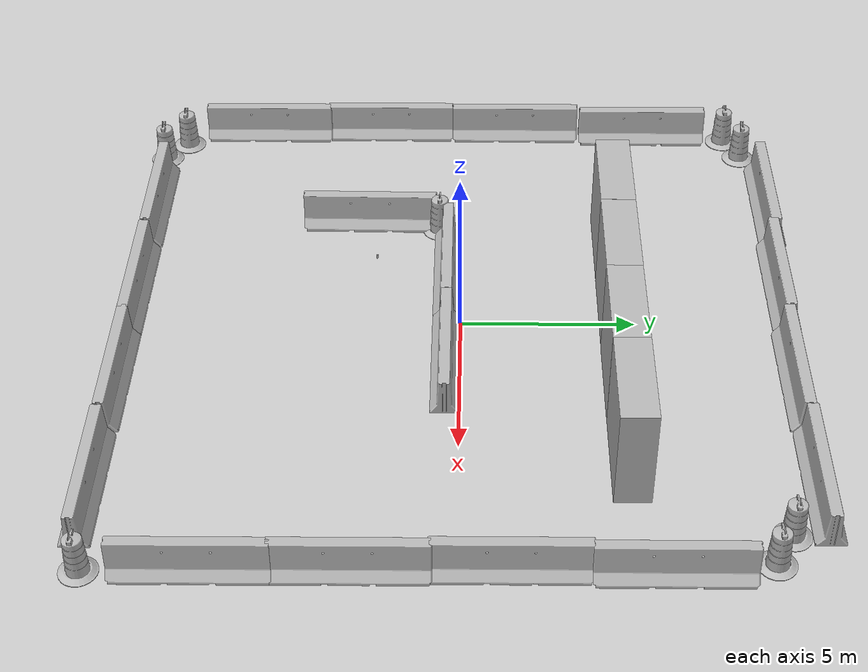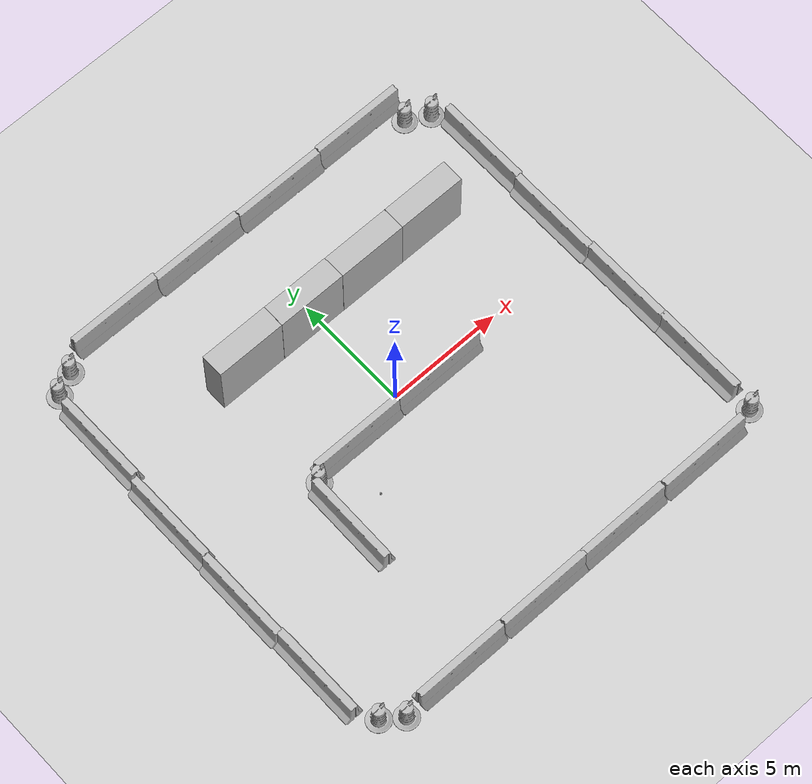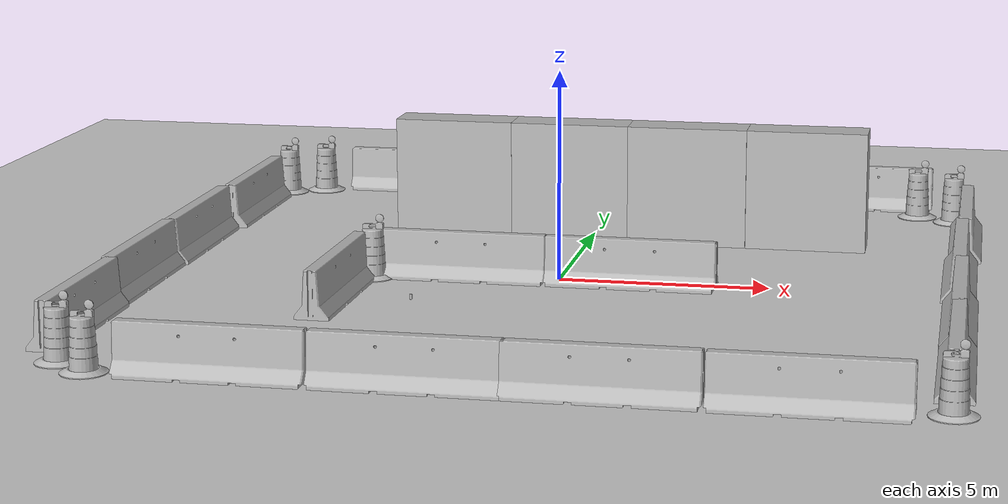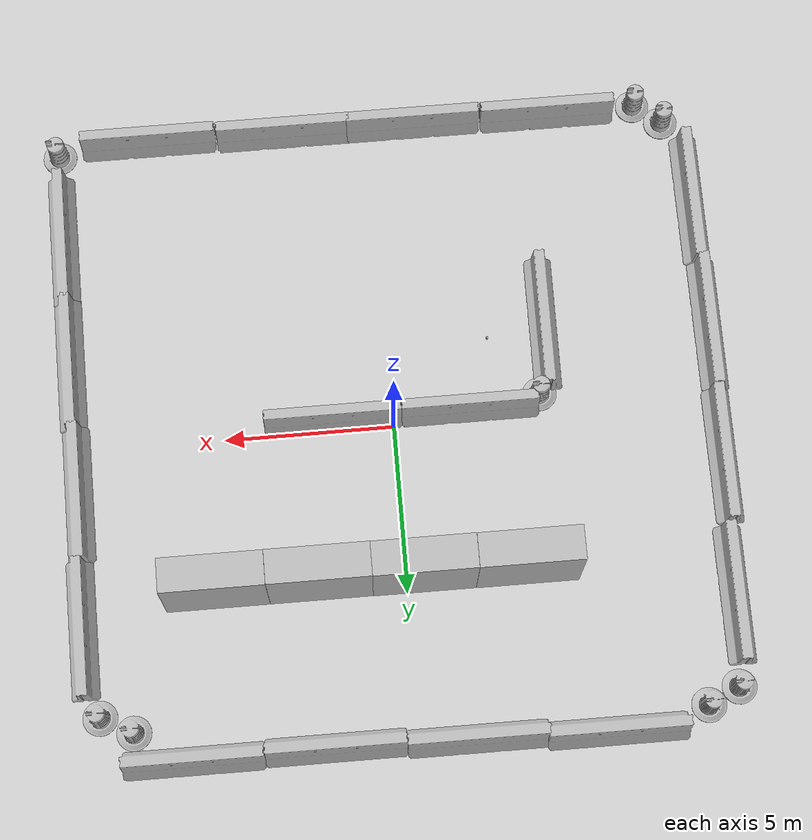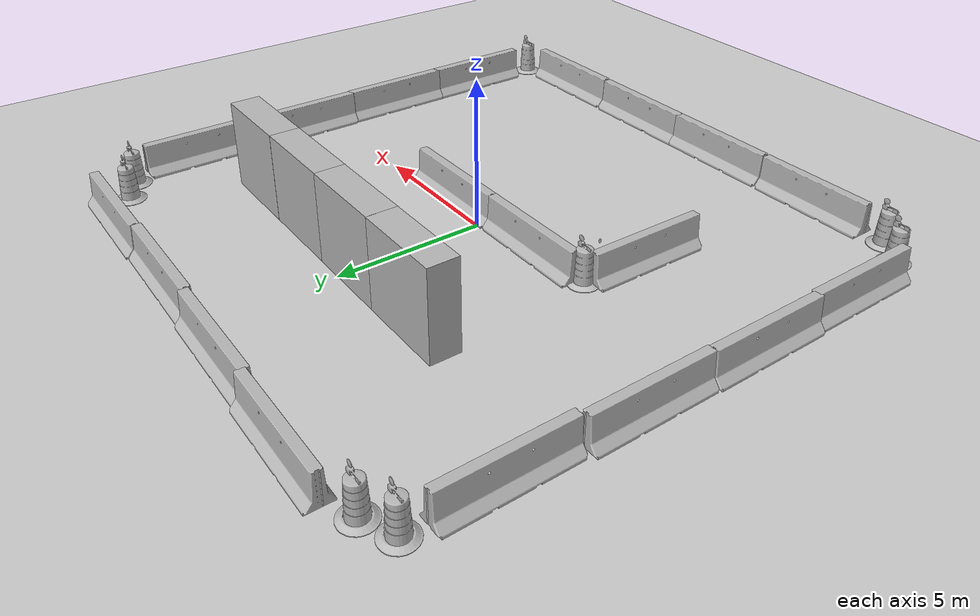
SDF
<sdf version="1.6">
 <world name="default">
  <light name="sun" type="directional">
   <pose>0 0 10 0 -0 0</pose>
   <diffuse>0.8 0.8 0.8 1</diffuse>
   <specular>0.2 0.2 0.2 1</specular>
   <attenuation>
    <range>1000</range>
    <constant>0.9</constant>
    <linear>0.01</linear>
    <quadratic>0.001</quadratic>
   </attenuation>
   <direction>-0.5 0.1 -0.9</direction>
  </light>
  <model name="ground_plane">
   <static>1</static>
   <link name="link">
    <collision name="collision">
     <geometry><plane><normal>0 0 1</normal><size>100 100</size></plane></geometry>
     <surface><friction><ode><mu>100</mu><mu2>50</mu2></ode></friction></surface>
    </collision>
    <visual name="visual">
     <cast_shadows>0</cast_shadows>
     <geometry><plane><normal>0 0 1</normal><size>100 100</size></plane></geometry>
     <material>
      <script><uri>file://media/materials/scripts/gazebo.material</uri><name>Gazebo/Grey</name></script>
     </material>
    </visual>
   </link>
  </model>
  <gravity>0 0 -9.8</gravity>
  <magnetic_field>6e-06 2.3e-05 -4.2e-05</magnetic_field>
  <atmosphere type="adiabatic"/>
  <physics name="default_physics" default="0" type="ode">
   <max_step_size>0.001</max_step_size>
   <real_time_factor>1</real_time_factor>
   <real_time_update_rate>1000</real_time_update_rate>
  </physics>
  <scene><ambient>0.4 0.4 0.4 1</ambient><background>0.7 0.7 0.7 1</background><shadows>1</shadows></scene>
  <spherical_coordinates>
   <surface_model>EARTH_WGS84</surface_model>
   <latitude_deg>0</latitude_deg>
   <longitude_deg>0</longitude_deg>
   <elevation>0</elevation>
   <heading_deg>0</heading_deg>
  </spherical_coordinates>
  <model name="jersey_barrier">
   <static>1</static>
   <link name="link">
    <visual name="visual">
     <geometry><mesh><uri>model://jersey_barrier/meshes/jersey_barrier.dae</uri></mesh></geometry>
    </visual>
    <collision name="upright">
     <pose>0 0 0.5715 0 -0 0</pose>
     <geometry><box><size>4.06542 0.3063 1.143</size></box></geometry>
    </collision>
    <collision name="base">
     <pose>0 0 0.032258 0 -0 0</pose>
     <geometry><box><size>4.06542 0.8107 0.064516</size></box></geometry>
    </collision>
    <collision name="base2">
     <pose>0 0 0.1 0 -0 0</pose>
     <geometry><box><size>4.06542 0.65 0.1</size></box></geometry>
    </collision>
    <collision name="base3">
     <pose>0 0 0.2 0 -0 0</pose>
     <geometry><box><size>4.06542 0.5 0.1</size></box></geometry>
    </collision>
    <collision name="left-angle">
     <pose>0 -0.224 0.2401 0.9 -0 0</pose>
     <geometry><box><size>4.06542 0.5 0.064516</size></box></geometry>
    </collision>
    <collision name="right-angle">
     <pose>0 0.224 0.2401 -0.9 0 0</pose>
     <geometry><box><size>4.06542 0.5 0.064516</size></box></geometry>
    </collision>
   </link>
   <pose>-5.65677 9.4608 0 0 -0 0</pose>
  </model>
  <model name="jersey_barrier_clone">
   <static>1</static>
   <link name="link">
    <visual name="visual">
     <geometry><mesh><uri>model://jersey_barrier/meshes/jersey_barrier.dae</uri></mesh></geometry>
    </visual>
    <collision name="upright">
     <pose>0 0 0.5715 0 -0 0</pose>
     <geometry><box><size>4.06542 0.3063 1.143</size></box></geometry>
    </collision>
    <collision name="base">
     <pose>0 0 0.032258 0 -0 0</pose>
     <geometry><box><size>4.06542 0.8107 0.064516</size></box></geometry>
    </collision>
    <collision name="base2">
     <pose>0 0 0.1 0 -0 0</pose>
     <geometry><box><size>4.06542 0.65 0.1</size></box></geometry>
    </collision>
    <collision name="base3">
     <pose>0 0 0.2 0 -0 0</pose>
     <geometry><box><size>4.06542 0.5 0.1</size></box></geometry>
    </collision>
    <collision name="left-angle">
     <pose>0 -0.224 0.2401 0.9 -0 0</pose>
     <geometry><box><size>4.06542 0.5 0.064516</size></box></geometry>
    </collision>
    <collision name="right-angle">
     <pose>0 0.224 0.2401 -0.9 0 0</pose>
     <geometry><box><size>4.06542 0.5 0.064516</size></box></geometry>
    </collision>
   </link>
   <pose>-1.65987 9.36075 0 0 -0 0</pose>
  </model>
  <model name="jersey_barrier_clone_0">
   <static>1</static>
   <link name="link">
    <visual name="visual">
     <geometry><mesh><uri>model://jersey_barrier/meshes/jersey_barrier.dae</uri></mesh></geometry>
    </visual>
    <collision name="upright">
     <pose>0 0 0.5715 0 -0 0</pose>
     <geometry><box><size>4.06542 0.3063 1.143</size></box></geometry>
    </collision>
    <collision name="base">
     <pose>0 0 0.032258 0 -0 0</pose>
     <geometry><box><size>4.06542 0.8107 0.064516</size></box></geometry>
    </collision>
    <collision name="base2">
     <pose>0 0 0.1 0 -0 0</pose>
     <geometry><box><size>4.06542 0.65 0.1</size></box></geometry>
    </collision>
    <collision name="base3">
     <pose>0 0 0.2 0 -0 0</pose>
     <geometry><box><size>4.06542 0.5 0.1</size></box></geometry>
    </collision>
    <collision name="left-angle">
     <pose>0 -0.224 0.2401 0.9 -0 0</pose>
     <geometry><box><size>4.06542 0.5 0.064516</size></box></geometry>
    </collision>
    <collision name="right-angle">
     <pose>0 0.224 0.2401 -0.9 0 0</pose>
     <geometry><box><size>4.06542 0.5 0.064516</size></box></geometry>
    </collision>
   </link>
   <pose>2.39773 9.29085 0 0 -0 0</pose>
  </model>
  <model name="jersey_barrier_clone_1">
   <static>1</static>
   <link name="link">
    <visual name="visual">
     <geometry><mesh><uri>model://jersey_barrier/meshes/jersey_barrier.dae</uri></mesh></geometry>
    </visual>
    <collision name="upright">
     <pose>0 0 0.5715 0 -0 0</pose>
     <geometry><box><size>4.06542 0.3063 1.143</size></box></geometry>
    </collision>
    <collision name="base">
     <pose>0 0 0.032258 0 -0 0</pose>
     <geometry><box><size>4.06542 0.8107 0.064516</size></box></geometry>
    </collision>
    <collision name="base2">
     <pose>0 0 0.1 0 -0 0</pose>
     <geometry><box><size>4.06542 0.65 0.1</size></box></geometry>
    </collision>
    <collision name="base3">
     <pose>0 0 0.2 0 -0 0</pose>
     <geometry><box><size>4.06542 0.5 0.1</size></box></geometry>
    </collision>
    <collision name="left-angle">
     <pose>0 -0.224 0.2401 0.9 -0 0</pose>
     <geometry><box><size>4.06542 0.5 0.064516</size></box></geometry>
    </collision>
    <collision name="right-angle">
     <pose>0 0.224 0.2401 -0.9 0 0</pose>
     <geometry><box><size>4.06542 0.5 0.064516</size></box></geometry>
    </collision>
   </link>
   <pose>6.45464 9.33993 0 0 -0 0</pose>
  </model>
  <model name="jersey_barrier_clone_3">
   <static>1</static>
   <link name="link">
    <visual name="visual">
     <geometry><mesh><uri>model://jersey_barrier/meshes/jersey_barrier.dae</uri></mesh></geometry>
    </visual>
    <collision name="upright">
     <pose>0 0 0.5715 0 -0 0</pose>
     <geometry><box><size>4.06542 0.3063 1.143</size></box></geometry>
    </collision>
    <collision name="base">
     <pose>0 0 0.032258 0 -0 0</pose>
     <geometry><box><size>4.06542 0.8107 0.064516</size></box></geometry>
    </collision>
    <collision name="base2">
     <pose>0 0 0.1 0 -0 0</pose>
     <geometry><box><size>4.06542 0.65 0.1</size></box></geometry>
    </collision>
    <collision name="base3">
     <pose>0 0 0.2 0 -0 0</pose>
     <geometry><box><size>4.06542 0.5 0.1</size></box></geometry>
    </collision>
    <collision name="left-angle">
     <pose>0 -0.224 0.2401 0.9 -0 0</pose>
     <geometry><box><size>4.06542 0.5 0.064516</size></box></geometry>
    </collision>
    <collision name="right-angle">
     <pose>0 0.224 0.2401 -0.9 0 0</pose>
     <geometry><box><size>4.06542 0.5 0.064516</size></box></geometry>
    </collision>
   </link>
   <pose>9.44656 5.35522 0 0 0 -1.56865</pose>
  </model>
  <model name="jersey_barrier_clone_3_clone">
   <static>1</static>
   <link name="link">
    <visual name="visual">
     <geometry><mesh><uri>model://jersey_barrier/meshes/jersey_barrier.dae</uri></mesh></geometry>
    </visual>
    <collision name="upright">
     <pose>0 0 0.5715 0 -0 0</pose>
     <geometry><box><size>4.06542 0.3063 1.143</size></box></geometry>
    </collision>
    <collision name="base">
     <pose>0 0 0.032258 0 -0 0</pose>
     <geometry><box><size>4.06542 0.8107 0.064516</size></box></geometry>
    </collision>
    <collision name="base2">
     <pose>0 0 0.1 0 -0 0</pose>
     <geometry><box><size>4.06542 0.65 0.1</size></box></geometry>
    </collision>
    <collision name="base3">
     <pose>0 0 0.2 0 -0 0</pose>
     <geometry><box><size>4.06542 0.5 0.1</size></box></geometry>
    </collision>
    <collision name="left-angle">
     <pose>0 -0.224 0.2401 0.9 -0 0</pose>
     <geometry><box><size>4.06542 0.5 0.064516</size></box></geometry>
    </collision>
    <collision name="right-angle">
     <pose>0 0.224 0.2401 -0.9 0 0</pose>
     <geometry><box><size>4.06542 0.5 0.064516</size></box></geometry>
    </collision>
   </link>
   <pose>9.3727 1.33119 0 0 0 -1.56865</pose>
  </model>
  <model name="jersey_barrier_clone_3_clone_0">
   <static>1</static>
   <link name="link">
    <visual name="visual">
     <geometry><mesh><uri>model://jersey_barrier/meshes/jersey_barrier.dae</uri></mesh></geometry>
    </visual>
    <collision name="upright">
     <pose>0 0 0.5715 0 -0 0</pose>
     <geometry><box><size>4.06542 0.3063 1.143</size></box></geometry>
    </collision>
    <collision name="base">
     <pose>0 0 0.032258 0 -0 0</pose>
     <geometry><box><size>4.06542 0.8107 0.064516</size></box></geometry>
    </collision>
    <collision name="base2">
     <pose>0 0 0.1 0 -0 0</pose>
     <geometry><box><size>4.06542 0.65 0.1</size></box></geometry>
    </collision>
    <collision name="base3">
     <pose>0 0 0.2 0 -0 0</pose>
     <geometry><box><size>4.06542 0.5 0.1</size></box></geometry>
    </collision>
    <collision name="left-angle">
     <pose>0 -0.224 0.2401 0.9 -0 0</pose>
     <geometry><box><size>4.06542 0.5 0.064516</size></box></geometry>
    </collision>
    <collision name="right-angle">
     <pose>0 0.224 0.2401 -0.9 0 0</pose>
     <geometry><box><size>4.06542 0.5 0.064516</size></box></geometry>
    </collision>
   </link>
   <pose>9.4315 -2.6268 0 0 0 -1.56865</pose>
  </model>
  <model name="jersey_barrier_clone_3_clone_1">
   <static>1</static>
   <link name="link">
    <visual name="visual">
     <geometry><mesh><uri>model://jersey_barrier/meshes/jersey_barrier.dae</uri></mesh></geometry>
    </visual>
    <collision name="upright">
     <pose>0 0 0.5715 0 -0 0</pose>
     <geometry><box><size>4.06542 0.3063 1.143</size></box></geometry>
    </collision>
    <collision name="base">
     <pose>0 0 0.032258 0 -0 0</pose>
     <geometry><box><size>4.06542 0.8107 0.064516</size></box></geometry>
    </collision>
    <collision name="base2">
     <pose>0 0 0.1 0 -0 0</pose>
     <geometry><box><size>4.06542 0.65 0.1</size></box></geometry>
    </collision>
    <collision name="base3">
     <pose>0 0 0.2 0 -0 0</pose>
     <geometry><box><size>4.06542 0.5 0.1</size></box></geometry>
    </collision>
    <collision name="left-angle">
     <pose>0 -0.224 0.2401 0.9 -0 0</pose>
     <geometry><box><size>4.06542 0.5 0.064516</size></box></geometry>
    </collision>
    <collision name="right-angle">
     <pose>0 0.224 0.2401 -0.9 0 0</pose>
     <geometry><box><size>4.06542 0.5 0.064516</size></box></geometry>
    </collision>
   </link>
   <pose>9.44969 -6.53485 0 0 0 -1.56865</pose>
  </model>
  <model name="jersey_barrier_clone_2_clone">
   <static>1</static>
   <link name="link">
    <visual name="visual">
     <geometry><mesh><uri>model://jersey_barrier/meshes/jersey_barrier.dae</uri></mesh></geometry>
    </visual>
    <collision name="upright">
     <pose>0 0 0.5715 0 -0 0</pose>
     <geometry><box><size>4.06542 0.3063 1.143</size></box></geometry>
    </collision>
    <collision name="base">
     <pose>0 0 0.032258 0 -0 0</pose>
     <geometry><box><size>4.06542 0.8107 0.064516</size></box></geometry>
    </collision>
    <collision name="base2">
     <pose>0 0 0.1 0 -0 0</pose>
     <geometry><box><size>4.06542 0.65 0.1</size></box></geometry>
    </collision>
    <collision name="base3">
     <pose>0 0 0.2 0 -0 0</pose>
     <geometry><box><size>4.06542 0.5 0.1</size></box></geometry>
    </collision>
    <collision name="left-angle">
     <pose>0 -0.224 0.2401 0.9 -0 0</pose>
     <geometry><box><size>4.06542 0.5 0.064516</size></box></geometry>
    </collision>
    <collision name="right-angle">
     <pose>0 0.224 0.2401 -0.9 0 0</pose>
     <geometry><box><size>4.06542 0.5 0.064516</size></box></geometry>
    </collision>
   </link>
   <pose>6.70657 -9.54347 0 0 -0 0</pose>
  </model>
  <model name="jersey_barrier_clone_2_clone_0">
   <static>1</static>
   <link name="link">
    <visual name="visual">
     <geometry><mesh><uri>model://jersey_barrier/meshes/jersey_barrier.dae</uri></mesh></geometry>
    </visual>
    <collision name="upright">
     <pose>0 0 0.5715 0 -0 0</pose>
     <geometry><box><size>4.06542 0.3063 1.143</size></box></geometry>
    </collision>
    <collision name="base">
     <pose>0 0 0.032258 0 -0 0</pose>
     <geometry><box><size>4.06542 0.8107 0.064516</size></box></geometry>
    </collision>
    <collision name="base2">
     <pose>0 0 0.1 0 -0 0</pose>
     <geometry><box><size>4.06542 0.65 0.1</size></box></geometry>
    </collision>
    <collision name="base3">
     <pose>0 0 0.2 0 -0 0</pose>
     <geometry><box><size>4.06542 0.5 0.1</size></box></geometry>
    </collision>
    <collision name="left-angle">
     <pose>0 -0.224 0.2401 0.9 -0 0</pose>
     <geometry><box><size>4.06542 0.5 0.064516</size></box></geometry>
    </collision>
    <collision name="right-angle">
     <pose>0 0.224 0.2401 -0.9 0 0</pose>
     <geometry><box><size>4.06542 0.5 0.064516</size></box></geometry>
    </collision>
   </link>
   <pose>2.59616 -9.50928 0 0 -0 0</pose>
  </model>
  <model name="jersey_barrier_clone_2_clone_1">
   <static>1</static>
   <link name="link">
    <visual name="visual">
     <geometry><mesh><uri>model://jersey_barrier/meshes/jersey_barrier.dae</uri></mesh></geometry>
    </visual>
    <collision name="upright">
     <pose>0 0 0.5715 0 -0 0</pose>
     <geometry><box><size>4.06542 0.3063 1.143</size></box></geometry>
    </collision>
    <collision name="base">
     <pose>0 0 0.032258 0 -0 0</pose>
     <geometry><box><size>4.06542 0.8107 0.064516</size></box></geometry>
    </collision>
    <collision name="base2">
     <pose>0 0 0.1 0 -0 0</pose>
     <geometry><box><size>4.06542 0.65 0.1</size></box></geometry>
    </collision>
    <collision name="base3">
     <pose>0 0 0.2 0 -0 0</pose>
     <geometry><box><size>4.06542 0.5 0.1</size></box></geometry>
    </collision>
    <collision name="left-angle">
     <pose>0 -0.224 0.2401 0.9 -0 0</pose>
     <geometry><box><size>4.06542 0.5 0.064516</size></box></geometry>
    </collision>
    <collision name="right-angle">
     <pose>0 0.224 0.2401 -0.9 0 0</pose>
     <geometry><box><size>4.06542 0.5 0.064516</size></box></geometry>
    </collision>
   </link>
   <pose>-1.33414 -9.50852 0 0 -0 0</pose>
  </model>
  <model name="jersey_barrier_clone_2_clone_2">
   <static>1</static>
   <link name="link">
    <visual name="visual">
     <geometry><mesh><uri>model://jersey_barrier/meshes/jersey_barrier.dae</uri></mesh></geometry>
    </visual>
    <collision name="upright">
     <pose>0 0 0.5715 0 -0 0</pose>
     <geometry><box><size>4.06542 0.3063 1.143</size></box></geometry>
    </collision>
    <collision name="base">
     <pose>0 0 0.032258 0 -0 0</pose>
     <geometry><box><size>4.06542 0.8107 0.064516</size></box></geometry>
    </collision>
    <collision name="base2">
     <pose>0 0 0.1 0 -0 0</pose>
     <geometry><box><size>4.06542 0.65 0.1</size></box></geometry>
    </collision>
    <collision name="base3">
     <pose>0 0 0.2 0 -0 0</pose>
     <geometry><box><size>4.06542 0.5 0.1</size></box></geometry>
    </collision>
    <collision name="left-angle">
     <pose>0 -0.224 0.2401 0.9 -0 0</pose>
     <geometry><box><size>4.06542 0.5 0.064516</size></box></geometry>
    </collision>
    <collision name="right-angle">
     <pose>0 0.224 0.2401 -0.9 0 0</pose>
     <geometry><box><size>4.06542 0.5 0.064516</size></box></geometry>
    </collision>
   </link>
   <pose>-5.44605 -9.49634 0 0 -0 0</pose>
  </model>
  <model name="jersey_barrier_clone_3_clone_1_clone">
   <static>1</static>
   <link name="link">
    <visual name="visual">
     <geometry><mesh><uri>model://jersey_barrier/meshes/jersey_barrier.dae</uri></mesh></geometry>
    </visual>
    <collision name="upright">
     <pose>0 0 0.5715 0 -0 0</pose>
     <geometry><box><size>4.06542 0.3063 1.143</size></box></geometry>
    </collision>
    <collision name="base">
     <pose>0 0 0.032258 0 -0 0</pose>
     <geometry><box><size>4.06542 0.8107 0.064516</size></box></geometry>
    </collision>
    <collision name="base2">
     <pose>0 0 0.1 0 -0 0</pose>
     <geometry><box><size>4.06542 0.65 0.1</size></box></geometry>
    </collision>
    <collision name="base3">
     <pose>0 0 0.2 0 -0 0</pose>
     <geometry><box><size>4.06542 0.5 0.1</size></box></geometry>
    </collision>
    <collision name="left-angle">
     <pose>0 -0.224 0.2401 0.9 -0 0</pose>
     <geometry><box><size>4.06542 0.5 0.064516</size></box></geometry>
    </collision>
    <collision name="right-angle">
     <pose>0 0.224 0.2401 -0.9 0 0</pose>
     <geometry><box><size>4.06542 0.5 0.064516</size></box></geometry>
    </collision>
   </link>
   <pose>-9.54289 -6.33149 0 0 0 -1.56865</pose>
  </model>
  <model name="jersey_barrier_clone_3_clone_1_clone_0">
   <static>1</static>
   <link name="link">
    <visual name="visual">
     <geometry><mesh><uri>model://jersey_barrier/meshes/jersey_barrier.dae</uri></mesh></geometry>
    </visual>
    <collision name="upright">
     <pose>0 0 0.5715 0 -0 0</pose>
     <geometry><box><size>4.06542 0.3063 1.143</size></box></geometry>
    </collision>
    <collision name="base">
     <pose>0 0 0.032258 0 -0 0</pose>
     <geometry><box><size>4.06542 0.8107 0.064516</size></box></geometry>
    </collision>
    <collision name="base2">
     <pose>0 0 0.1 0 -0 0</pose>
     <geometry><box><size>4.06542 0.65 0.1</size></box></geometry>
    </collision>
    <collision name="base3">
     <pose>0 0 0.2 0 -0 0</pose>
     <geometry><box><size>4.06542 0.5 0.1</size></box></geometry>
    </collision>
    <collision name="left-angle">
     <pose>0 -0.224 0.2401 0.9 -0 0</pose>
     <geometry><box><size>4.06542 0.5 0.064516</size></box></geometry>
    </collision>
    <collision name="right-angle">
     <pose>0 0.224 0.2401 -0.9 0 0</pose>
     <geometry><box><size>4.06542 0.5 0.064516</size></box></geometry>
    </collision>
   </link>
   <pose>-9.6221 -2.35336 0 0 0 -1.56865</pose>
  </model>
  <model name="jersey_barrier_clone_3_clone_1_clone_1">
   <static>1</static>
   <link name="link">
    <visual name="visual">
     <geometry><mesh><uri>model://jersey_barrier/meshes/jersey_barrier.dae</uri></mesh></geometry>
    </visual>
    <collision name="upright">
     <pose>0 0 0.5715 0 -0 0</pose>
     <geometry><box><size>4.06542 0.3063 1.143</size></box></geometry>
    </collision>
    <collision name="base">
     <pose>0 0 0.032258 0 -0 0</pose>
     <geometry><box><size>4.06542 0.8107 0.064516</size></box></geometry>
    </collision>
    <collision name="base2">
     <pose>0 0 0.1 0 -0 0</pose>
     <geometry><box><size>4.06542 0.65 0.1</size></box></geometry>
    </collision>
    <collision name="base3">
     <pose>0 0 0.2 0 -0 0</pose>
     <geometry><box><size>4.06542 0.5 0.1</size></box></geometry>
    </collision>
    <collision name="left-angle">
     <pose>0 -0.224 0.2401 0.9 -0 0</pose>
     <geometry><box><size>4.06542 0.5 0.064516</size></box></geometry>
    </collision>
    <collision name="right-angle">
     <pose>0 0.224 0.2401 -0.9 0 0</pose>
     <geometry><box><size>4.06542 0.5 0.064516</size></box></geometry>
    </collision>
   </link>
   <pose>-9.58952 1.69745 0 0 0 -1.56865</pose>
  </model>
  <model name="jersey_barrier_clone_3_clone_1_clone_2">
   <static>1</static>
   <link name="link">
    <visual name="visual">
     <geometry><mesh><uri>model://jersey_barrier/meshes/jersey_barrier.dae</uri></mesh></geometry>
    </visual>
    <collision name="upright">
     <pose>0 0 0.5715 0 -0 0</pose>
     <geometry><box><size>4.06542 0.3063 1.143</size></box></geometry>
    </collision>
    <collision name="base">
     <pose>0 0 0.032258 0 -0 0</pose>
     <geometry><box><size>4.06542 0.8107 0.064516</size></box></geometry>
    </collision>
    <collision name="base2">
     <pose>0 0 0.1 0 -0 0</pose>
     <geometry><box><size>4.06542 0.65 0.1</size></box></geometry>
    </collision>
    <collision name="base3">
     <pose>0 0 0.2 0 -0 0</pose>
     <geometry><box><size>4.06542 0.5 0.1</size></box></geometry>
    </collision>
    <collision name="left-angle">
     <pose>0 -0.224 0.2401 0.9 -0 0</pose>
     <geometry><box><size>4.06542 0.5 0.064516</size></box></geometry>
    </collision>
    <collision name="right-angle">
     <pose>0 0.224 0.2401 -0.9 0 0</pose>
     <geometry><box><size>4.06542 0.5 0.064516</size></box></geometry>
    </collision>
   </link>
   <pose>-9.44715 5.83721 0 0 0 -1.56865</pose>
  </model>
  <model name="Construction Barrel">
   <link name="link">
    <inertial>
     <pose>0 0 0.4 0 -0 0</pose>
     <mass>500</mass>
     <inertia><ixx>51.2096</ixx><iyy>51.2096</iyy><izz>25</izz><ixy>0</ixy><ixz>0</ixz><iyz>0</iyz></inertia>
    </inertial>
    <collision name="collision">
     <geometry><mesh><uri>model://construction_barrel/meshes/construction_barrel.dae</uri></mesh></geometry>
    </collision>
    <visual name="visual">
     <geometry><mesh><uri>model://construction_barrel/meshes/construction_barrel.dae</uri></mesh></geometry>
    </visual>
   </link>
   <pose>9.07443 7.91055 -2e-06 -5e-06 -4e-06 -6.3e-05</pose>
  </model>
  <model name="Construction Barrel_0">
   <link name="link">
    <inertial>
     <pose>0 0 0.4 0 -0 0</pose>
     <mass>500</mass>
     <inertia><ixx>51.2096</ixx><iyy>51.2096</iyy><izz>25</izz><ixy>0</ixy><ixz>0</ixz><iyz>0</iyz></inertia>
    </inertial>
    <collision name="collision">
     <geometry><mesh><uri>model://construction_barrel/meshes/construction_barrel.dae</uri></mesh></geometry>
    </collision>
    <visual name="visual">
     <geometry><mesh><uri>model://construction_barrel/meshes/construction_barrel.dae</uri></mesh></geometry>
    </visual>
   </link>
   <pose>8.12827 8.41635 -2e-06 -5e-06 -4e-06 -5.9e-05</pose>
  </model>
  <model name="Construction Barrel_1">
   <link name="link">
    <inertial>
     <pose>0 0 0.4 0 -0 0</pose>
     <mass>500</mass>
     <inertia><ixx>51.2096</ixx><iyy>51.2096</iyy><izz>25</izz><ixy>0</ixy><ixz>0</ixz><iyz>0</iyz></inertia>
    </inertial>
    <collision name="collision">
     <geometry><mesh><uri>model://construction_barrel/meshes/construction_barrel.dae</uri></mesh></geometry>
    </collision>
    <visual name="visual">
     <geometry><mesh><uri>model://construction_barrel/meshes/construction_barrel.dae</uri></mesh></geometry>
    </visual>
   </link>
   <pose>-9.27264 8.48391 -2e-06 -5e-06 -4e-06 -5.8e-05</pose>
  </model>
  <model name="Construction Barrel_2">
   <link name="link">
    <inertial>
     <pose>0 0 0.4 0 -0 0</pose>
     <mass>500</mass>
     <inertia><ixx>51.2096</ixx><iyy>51.2096</iyy><izz>25</izz><ixy>0</ixy><ixz>0</ixz><iyz>0</iyz></inertia>
    </inertial>
    <collision name="collision">
     <geometry><mesh><uri>model://construction_barrel/meshes/construction_barrel.dae</uri></mesh></geometry>
    </collision>
    <visual name="visual">
     <geometry><mesh><uri>model://construction_barrel/meshes/construction_barrel.dae</uri></mesh></geometry>
    </visual>
   </link>
   <pose>-8.34365 8.93853 -2e-06 -7e-06 -4e-06 -3.3e-05</pose>
  </model>
  <model name="Construction Barrel_3">
   <link name="link">
    <inertial>
     <pose>0 0 0.4 0 -0 0</pose>
     <mass>500</mass>
     <inertia><ixx>51.2096</ixx><iyy>51.2096</iyy><izz>25</izz><ixy>0</ixy><ixz>0</ixz><iyz>0</iyz></inertia>
    </inertial>
    <collision name="collision">
     <geometry><mesh><uri>model://construction_barrel/meshes/construction_barrel.dae</uri></mesh></geometry>
    </collision>
    <visual name="visual">
     <geometry><mesh><uri>model://construction_barrel/meshes/construction_barrel.dae</uri></mesh></geometry>
    </visual>
   </link>
   <pose>9.45362 -9.29433 -2e-06 -5e-06 -4e-06 -5.6e-05</pose>
  </model>
  <model name="Construction Barrel_4">
   <link name="link">
    <inertial>
     <pose>0 0 0.4 0 -0 0</pose>
     <mass>500</mass>
     <inertia><ixx>51.2096</ixx><iyy>51.2096</iyy><izz>25</izz><ixy>0</ixy><ixz>0</ixz><iyz>0</iyz></inertia>
    </inertial>
    <collision name="collision">
     <geometry><mesh><uri>model://construction_barrel/meshes/construction_barrel.dae</uri></mesh></geometry>
    </collision>
    <visual name="visual">
     <geometry><mesh><uri>model://construction_barrel/meshes/construction_barrel.dae</uri></mesh></geometry>
    </visual>
   </link>
   <pose>-8.13317 -9.57174 -2e-06 7e-06 -2e-06 -0.000479</pose>
  </model>
  <model name="Construction Barrel_5">
   <link name="link">
    <inertial>
     <pose>0 0 0.4 0 -0 0</pose>
     <mass>500</mass>
     <inertia><ixx>51.2096</ixx><iyy>51.2096</iyy><izz>25</izz><ixy>0</ixy><ixz>0</ixz><iyz>0</iyz></inertia>
    </inertial>
    <collision name="collision">
     <geometry><mesh><uri>model://construction_barrel/meshes/construction_barrel.dae</uri></mesh></geometry>
    </collision>
    <visual name="visual">
     <geometry><mesh><uri>model://construction_barrel/meshes/construction_barrel.dae</uri></mesh></geometry>
    </visual>
   </link>
   <pose>-8.93852 -8.96008 -1e-06 3e-06 -2e-06 -0.00039</pose>
  </model>
  <model name="jersey_barrier_0_clone_1">
   <static>1</static>
   <link name="link">
    <visual name="visual">
     <geometry><mesh><uri>model://jersey_barrier/meshes/jersey_barrier.dae</uri></mesh></geometry>
    </visual>
    <collision name="upright">
     <pose>0 0 0.5715 0 -0 0</pose>
     <geometry><box><size>4.06542 0.3063 1.143</size></box></geometry>
    </collision>
    <collision name="base">
     <pose>0 0 0.032258 0 -0 0</pose>
     <geometry><box><size>4.06542 0.8107 0.064516</size></box></geometry>
    </collision>
    <collision name="base2">
     <pose>0 0 0.1 0 -0 0</pose>
     <geometry><box><size>4.06542 0.65 0.1</size></box></geometry>
    </collision>
    <collision name="base3">
     <pose>0 0 0.2 0 -0 0</pose>
     <geometry><box><size>4.06542 0.5 0.1</size></box></geometry>
    </collision>
    <collision name="left-angle">
     <pose>0 -0.224 0.2401 0.9 -0 0</pose>
     <geometry><box><size>4.06542 0.5 0.064516</size></box></geometry>
    </collision>
    <collision name="right-angle">
     <pose>0 0.224 0.2401 -0.9 0 0</pose>
     <geometry><box><size>4.06542 0.5 0.064516</size></box></geometry>
    </collision>
   </link>
   <pose>-2.28125 -0.396276 0 0 -0 0</pose>
  </model>
  <model name="jersey_barrier_0_clone_1_clone">
   <static>1</static>
   <link name="link">
    <visual name="visual">
     <geometry><mesh><uri>model://jersey_barrier/meshes/jersey_barrier.dae</uri></mesh></geometry>
    </visual>
    <collision name="upright">
     <pose>0 0 0.5715 0 -0 0</pose>
     <geometry><box><size>4.06542 0.3063 1.143</size></box></geometry>
    </collision>
    <collision name="base">
     <pose>0 0 0.032258 0 -0 0</pose>
     <geometry><box><size>4.06542 0.8107 0.064516</size></box></geometry>
    </collision>
    <collision name="base2">
     <pose>0 0 0.1 0 -0 0</pose>
     <geometry><box><size>4.06542 0.65 0.1</size></box></geometry>
    </collision>
    <collision name="base3">
     <pose>0 0 0.2 0 -0 0</pose>
     <geometry><box><size>4.06542 0.5 0.1</size></box></geometry>
    </collision>
    <collision name="left-angle">
     <pose>0 -0.224 0.2401 0.9 -0 0</pose>
     <geometry><box><size>4.06542 0.5 0.064516</size></box></geometry>
    </collision>
    <collision name="right-angle">
     <pose>0 0.224 0.2401 -0.9 0 0</pose>
     <geometry><box><size>4.06542 0.5 0.064516</size></box></geometry>
    </collision>
   </link>
   <pose>1.76519 -0.393386 0 0 -0 0</pose>
  </model>
  <model name="jersey_barrier_0_clone_1_clone_clone">
   <static>1</static>
   <link name="link">
    <visual name="visual">
     <geometry><mesh><uri>model://jersey_barrier/meshes/jersey_barrier.dae</uri></mesh></geometry>
    </visual>
    <collision name="upright">
     <pose>0 0 0.5715 0 -0 0</pose>
     <geometry><box><size>4.06542 0.3063 1.143</size></box></geometry>
    </collision>
    <collision name="base">
     <pose>0 0 0.032258 0 -0 0</pose>
     <geometry><box><size>4.06542 0.8107 0.064516</size></box></geometry>
    </collision>
    <collision name="base2">
     <pose>0 0 0.1 0 -0 0</pose>
     <geometry><box><size>4.06542 0.65 0.1</size></box></geometry>
    </collision>
    <collision name="base3">
     <pose>0 0 0.2 0 -0 0</pose>
     <geometry><box><size>4.06542 0.5 0.1</size></box></geometry>
    </collision>
    <collision name="left-angle">
     <pose>0 -0.224 0.2401 0.9 -0 0</pose>
     <geometry><box><size>4.06542 0.5 0.064516</size></box></geometry>
    </collision>
    <collision name="right-angle">
     <pose>0 0.224 0.2401 -0.9 0 0</pose>
     <geometry><box><size>4.06542 0.5 0.064516</size></box></geometry>
    </collision>
   </link>
   <pose>-4.70694 -2.78766 0 0 0 -1.58136</pose>
  </model>
  <model name="coke_can">
   <link name="link">
    <inertial>
     <pose>-0.01 -0.012 0.15 0 -0 0</pose>
     <mass>0.39</mass>
     <inertia><ixx>0.00058</ixx><ixy>0</ixy><ixz>0</ixz><iyy>0.00058</iyy><iyz>0</iyz><izz>0.00019</izz></inertia>
    </inertial>
    <collision name="collision">
     <pose>0 0 -0.46 0 -0 0</pose>
     <geometry><mesh><uri>model://coke_can/meshes/coke_can.dae</uri></mesh></geometry>
     <surface>
      <friction><ode><mu>1</mu><mu2>1</mu2></ode></friction>
      <contact><ode><kp>1e+07</kp><kd>1</kd><min_depth>0.001</min_depth><max_vel>0.1</max_vel></ode></contact>
     </surface>
    </collision>
    <visual name="visual">
     <pose>0 0 -0.46 0 -0 0</pose>
     <geometry><mesh><uri>model://coke_can/meshes/coke_can.dae</uri></mesh></geometry>
    </visual>
   </link>
   <pose>-3.00767 -2.51568 0.27637 -0.015663 -0.00169 -0.078437</pose>
  </model>
  <model name="Construction Barrel_6">
   <link name="link">
    <inertial>
     <pose>0 0 0.4 0 -0 0</pose>
     <mass>500</mass>
     <inertia><ixx>51.2096</ixx><iyy>51.2096</iyy><izz>25</izz><ixy>0</ixy><ixz>0</ixz><iyz>0</iyz></inertia>
    </inertial>
    <collision name="collision">
     <geometry><mesh><uri>model://construction_barrel/meshes/construction_barrel.dae</uri></mesh></geometry>
    </collision>
    <visual name="visual">
     <geometry><mesh><uri>model://construction_barrel/meshes/construction_barrel.dae</uri></mesh></geometry>
    </visual>
   </link>
   <pose>-4.39711 -0.665008 -0.000941 -0.004959 -0.002972 0.000854</pose>
  </model>
  <model name="brick_box_3x1x3">
   <static>1</static>
   <link name="chassis">
    <pose>0 0 1.5 0 -0 0</pose>
    <collision name="collision"><geometry><box><size>3 1 3</size></box></geometry></collision>
    <visual name="visual">
     <geometry><mesh><uri>model://brick_box_3x1x3/meshes/simple_box.dae</uri><scale>3 1 3</scale></mesh></geometry>
     <material>
      <script>
       <uri>model://brick_box_3x1x3/materials/scripts</uri>
       <uri>model://brick_box_3x1x3/materials/textures</uri>
       <name>BrickBox/Diffuse</name>
      </script>
     </material>
    </visual>
   </link>
   <pose>2.49276 4.48513 0 0 -0 0</pose>
  </model>
  <model name="brick_box_3x1x3_clone">
   <static>1</static>
   <link name="chassis">
    <pose>0 0 1.5 0 -0 0</pose>
    <collision name="collision"><geometry><box><size>3 1 3</size></box></geometry></collision>
    <visual name="visual">
     <geometry><mesh><uri>model://brick_box_3x1x3/meshes/simple_box.dae</uri><scale>3 1 3</scale></mesh></geometry>
     <material>
      <script>
       <uri>model://brick_box_3x1x3/materials/scripts</uri>
       <uri>model://brick_box_3x1x3/materials/textures</uri>
       <name>BrickBox/Diffuse</name>
      </script>
     </material>
    </visual>
   </link>
   <pose>-0.499297 4.49165 0 0 -0 0</pose>
  </model>
  <model name="brick_box_3x1x3_clone_clone">
   <static>1</static>
   <link name="chassis">
    <pose>0 0 1.5 0 -0 0</pose>
    <collision name="collision"><geometry><box><size>3 1 3</size></box></geometry></collision>
    <visual name="visual">
     <geometry><mesh><uri>model://brick_box_3x1x3/meshes/simple_box.dae</uri><scale>3 1 3</scale></mesh></geometry>
     <material>
      <script>
       <uri>model://brick_box_3x1x3/materials/scripts</uri>
       <uri>model://brick_box_3x1x3/materials/textures</uri>
       <name>BrickBox/Diffuse</name>
      </script>
     </material>
    </visual>
   </link>
   <pose>-3.50047 4.49648 0 0 -0 0</pose>
  </model>
  <model name="brick_box_3x1x3_clone_0">
   <static>1</static>
   <link name="chassis">
    <pose>0 0 1.5 0 -0 0</pose>
    <collision name="collision"><geometry><box><size>3 1 3</size></box></geometry></collision>
    <visual name="visual">
     <geometry><mesh><uri>model://brick_box_3x1x3/meshes/simple_box.dae</uri><scale>3 1 3</scale></mesh></geometry>
     <material>
      <script>
       <uri>model://brick_box_3x1x3/materials/scripts</uri>
       <uri>model://brick_box_3x1x3/materials/textures</uri>
       <name>BrickBox/Diffuse</name>
      </script>
     </material>
    </visual>
   </link>
   <pose>5.49498 4.48724 0 0 -0 0</pose>
  </model>
 </world>
</sdf>
